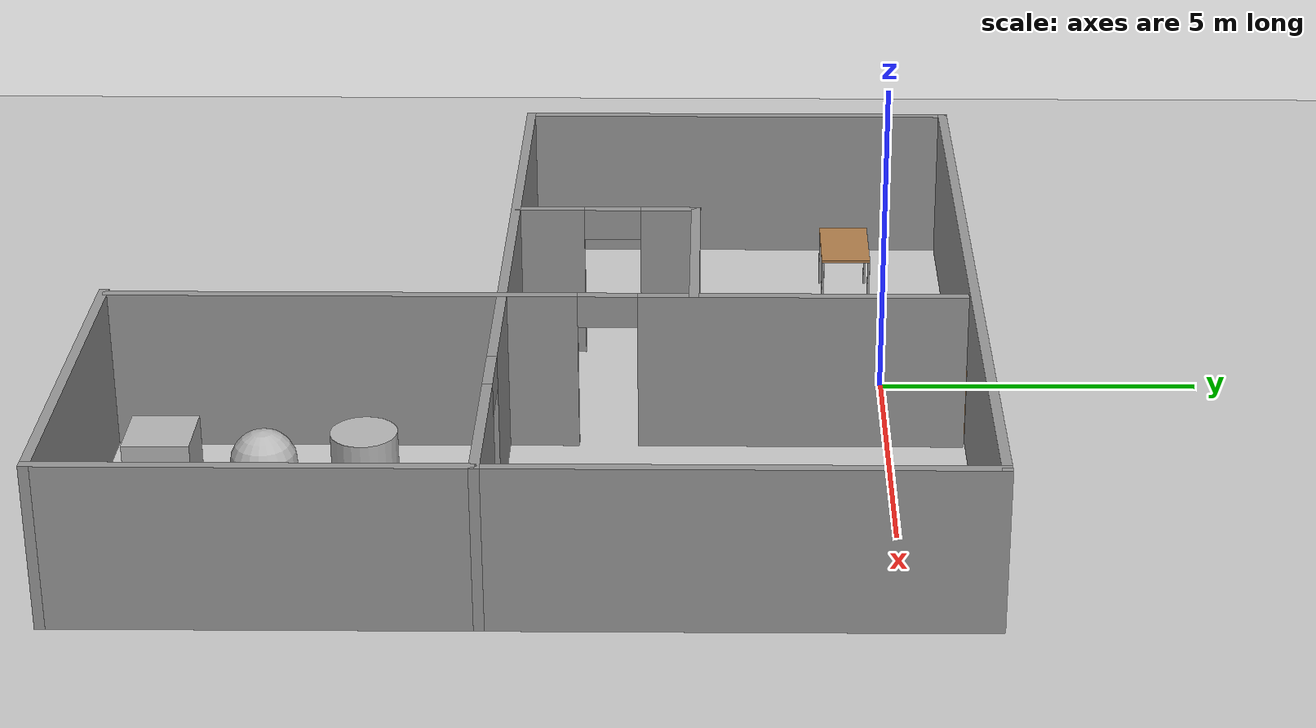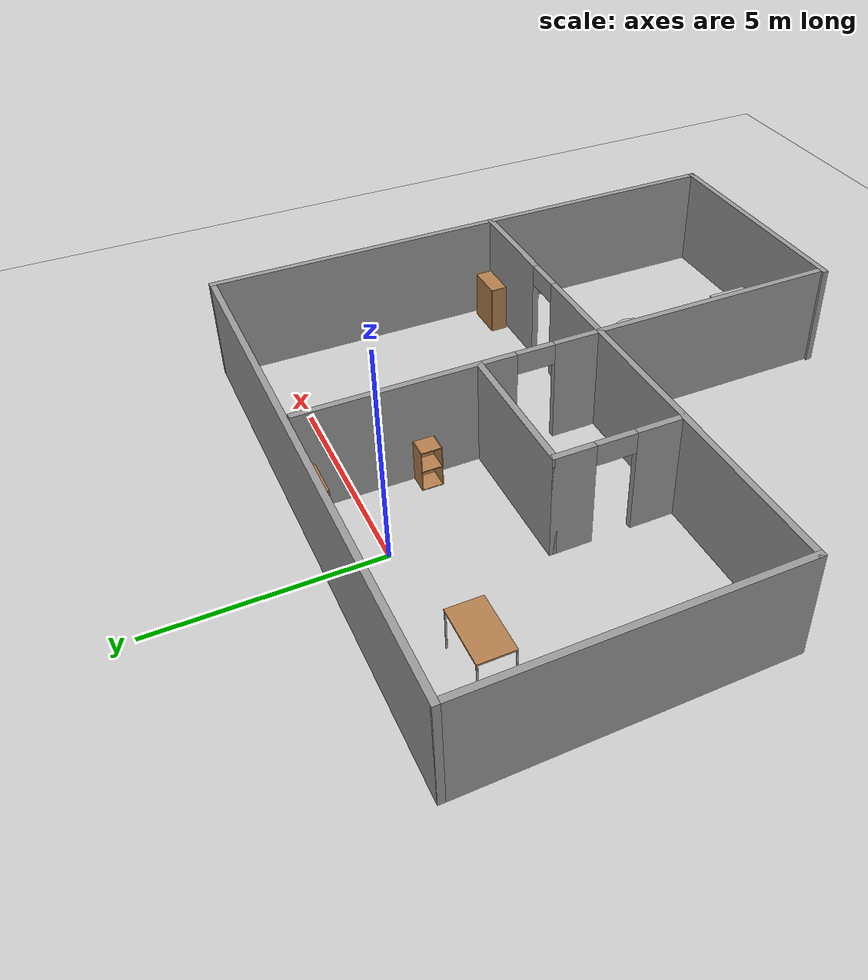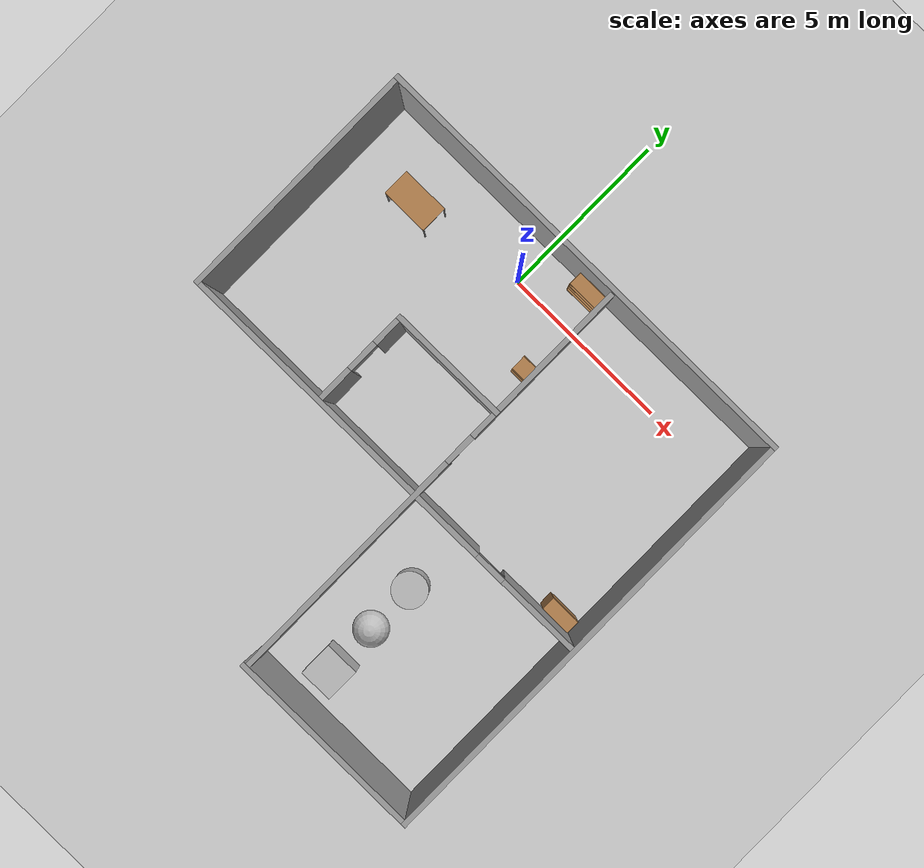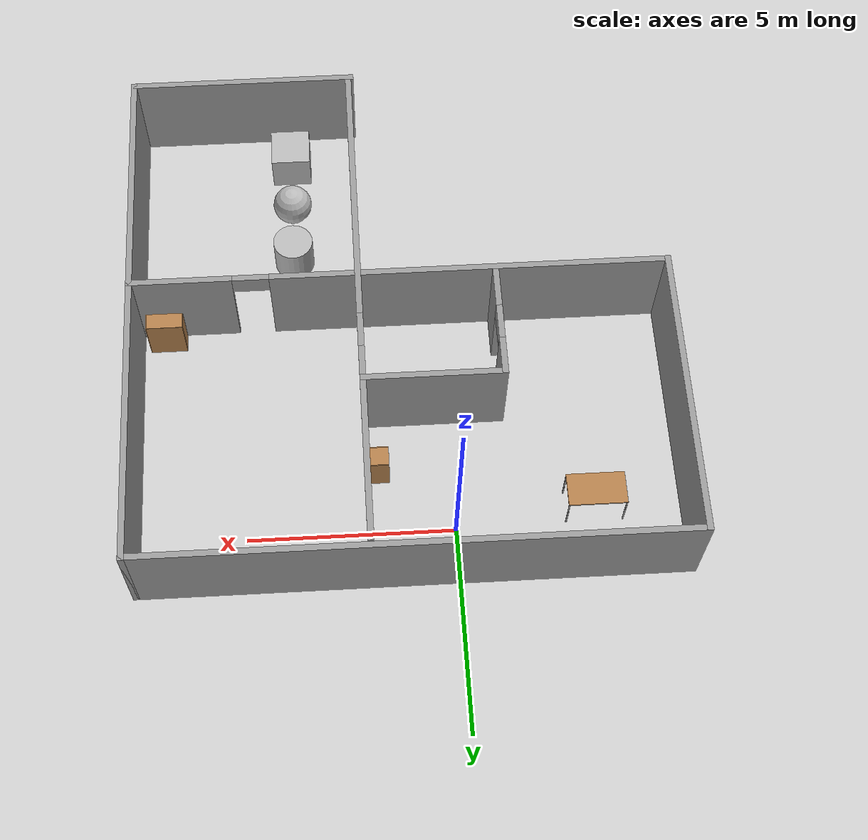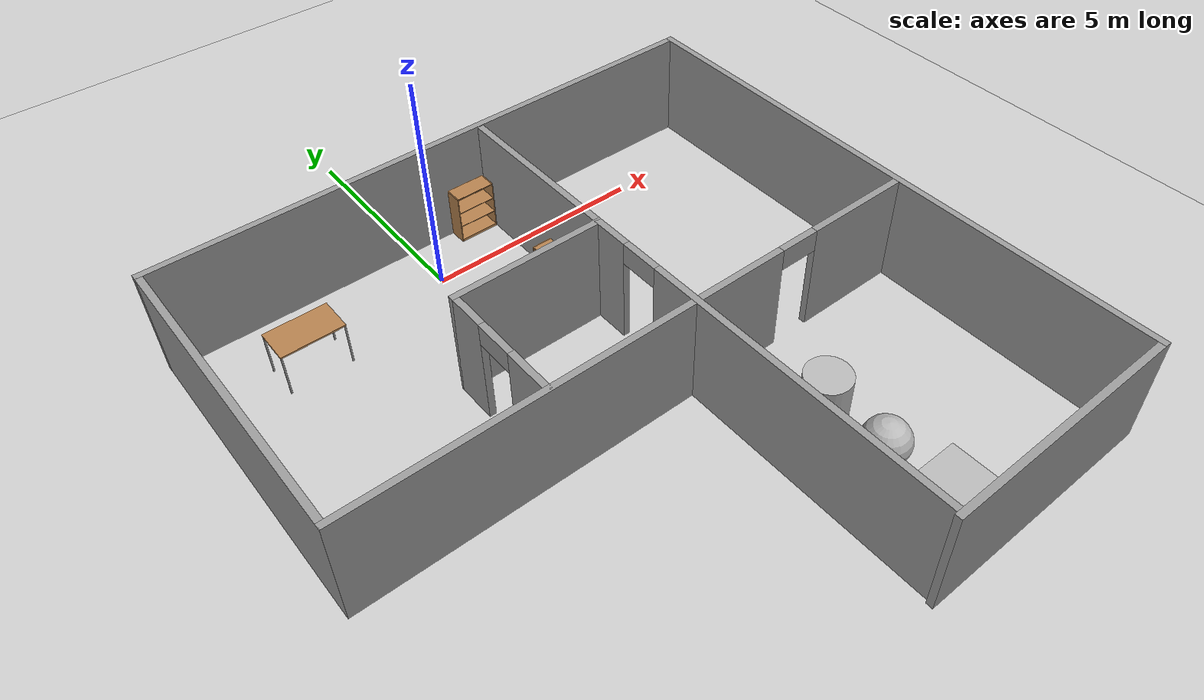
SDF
<sdf version="1.6">
 <world name="default">
  <light name="sun" type="directional">
   <pose>0 0 15 0 -0 0</pose>
   <diffuse>1 1 1 1</diffuse>
   <specular>0.1 0.1 0.1 1</specular>
   <attenuation>
    <range>1000</range>
    <constant>0.9</constant>
    <linear>0.01</linear>
    <quadratic>0.001</quadratic>
   </attenuation>
   <direction>-0.5 0.5 -1</direction>
  </light>
  <model name="ground_plane">
   <static>1</static>
   <link name="link">
    <collision name="collision">
     <geometry><plane><normal>0 0 1</normal><size>100 100</size></plane></geometry>
     <surface><friction><ode><mu>100</mu><mu2>50</mu2></ode></friction></surface>
    </collision>
    <visual name="visual">
     <cast_shadows>0</cast_shadows>
     <geometry><plane><normal>0 0 1</normal><size>100 100</size></plane></geometry>
     <material>
      <script><uri>file://media/materials/scripts/gazebo.material</uri><name>Gazebo/Grey</name></script>
     </material>
    </visual>
   </link>
  </model>
  <gravity>0 0 -9.8</gravity>
  <magnetic_field>6e-06 2.3e-05 -4.2e-05</magnetic_field>
  <atmosphere type="adiabatic"/>
  <physics name="default_physics" default="0" type="ode">
   <max_step_size>0.001</max_step_size>
   <real_time_factor>1</real_time_factor>
   <real_time_update_rate>1000</real_time_update_rate>
  </physics>
  <scene><ambient>0.4 0.4 0.4 1</ambient><background>0.7 0.7 0.7 1</background><shadows>1</shadows></scene>
  <spherical_coordinates>
   <surface_model>EARTH_WGS84</surface_model>
   <latitude_deg>0</latitude_deg>
   <longitude_deg>0</longitude_deg>
   <elevation>0</elevation>
   <heading_deg>0</heading_deg>
  </spherical_coordinates>
  <model name="testmap1">
   <pose>1.05093 -5.28705 0 0 -0 0</pose>
   <link name="Wall_1">
    <collision name="Wall_1_Collision">
     <geometry><box><size>13.25 0.15 2.5</size></box></geometry>
     <pose>0 0 1.25 0 -0 0</pose>
    </collision>
    <visual name="Wall_1_Visual">
     <pose>0 0 1.25 0 -0 0</pose>
     <geometry><box><size>13.25 0.15 2.5</size></box></geometry>
     <material>
      <script><uri>file://media/materials/scripts/gazebo.material</uri><name>Gazebo/Grey</name></script>
      <ambient>1 1 1 1</ambient>
     </material>
    </visual>
    <pose>0 6.55 0 0 -0 0</pose>
   </link>
   <link name="Wall_11">
    <collision name="Wall_11_Collision">
     <geometry><box><size>3.5 0.15 2.5</size></box></geometry>
     <pose>0 0 1.25 0 -0 0</pose>
    </collision>
    <visual name="Wall_11_Visual">
     <pose>0 0 1.25 0 -0 0</pose>
     <geometry><box><size>3.5 0.15 2.5</size></box></geometry>
     <material>
      <script><uri>file://media/materials/scripts/gazebo.material</uri><name>Gazebo/Grey</name></script>
      <ambient>1 1 1 1</ambient>
     </material>
    </visual>
    <pose>-0.663985 2.33165 0 0 -0 3.14159</pose>
   </link>
   <link name="Wall_12">
    <pose>-2.33899 0.906653 0 0 0 -1.5708</pose>
    <visual name="Wall_12_Visual_0">
     <pose>-1.0191 0 1.25 0 -0 0</pose>
     <geometry><box><size>0.961793 0.15 2.5</size></box></geometry>
     <material>
      <script><uri>file://media/materials/scripts/gazebo.material</uri><name>Gazebo/Grey</name></script>
      <ambient>1 1 1 1</ambient>
     </material>
    </visual>
    <collision name="Wall_12_Collision_0">
     <geometry><box><size>0.961793 0.15 2.5</size></box></geometry>
     <pose>-1.0191 0 1.25 0 -0 0</pose>
    </collision>
    <visual name="Wall_12_Visual_1">
     <pose>0.930896 0 1.25 0 -0 0</pose>
     <geometry><box><size>1.13821 0.15 2.5</size></box></geometry>
     <material>
      <script><uri>file://media/materials/scripts/gazebo.material</uri><name>Gazebo/Grey</name></script>
      <ambient>1 1 1 1</ambient>
     </material>
    </visual>
    <collision name="Wall_12_Collision_1">
     <geometry><box><size>1.13821 0.15 2.5</size></box></geometry>
     <pose>0.930896 0 1.25 0 -0 0</pose>
    </collision>
    <visual name="Wall_12_Visual_2">
     <pose>-0.088207 0 2.25 0 -0 0</pose>
     <geometry><box><size>0.9 0.15 0.5</size></box></geometry>
     <material>
      <script><uri>file://media/materials/scripts/gazebo.material</uri><name>Gazebo/Grey</name></script>
      <ambient>1 1 1 1</ambient>
     </material>
    </visual>
    <collision name="Wall_12_Collision_2">
     <geometry><box><size>0.9 0.15 0.5</size></box></geometry>
     <pose>-0.088207 0 2.25 0 -0 0</pose>
    </collision>
   </link>
   <link name="Wall_2">
    <collision name="Wall_2_Collision">
     <geometry><box><size>13.25 0.15 2.5</size></box></geometry>
     <pose>0 0 1.25 0 -0 0</pose>
    </collision>
    <visual name="Wall_2_Visual">
     <pose>0 0 1.25 0 -0 0</pose>
     <geometry><box><size>13.25 0.15 2.5</size></box></geometry>
     <material>
      <script><uri>file://media/materials/scripts/gazebo.material</uri><name>Gazebo/Grey</name></script>
      <ambient>1 1 1 1</ambient>
     </material>
    </visual>
    <pose>6.55 0 0 0 0 -1.5708</pose>
   </link>
   <link name="Wall_3">
    <collision name="Wall_3_Collision">
     <geometry><box><size>5.75 0.15 2.5</size></box></geometry>
     <pose>0 0 1.25 0 -0 0</pose>
    </collision>
    <visual name="Wall_3_Visual">
     <pose>0 0 1.25 0 -0 0</pose>
     <geometry><box><size>5.75 0.15 2.5</size></box></geometry>
     <material>
      <script><uri>file://media/materials/scripts/gazebo.material</uri><name>Gazebo/Grey</name></script>
      <ambient>1 1 1 1</ambient>
     </material>
    </visual>
    <pose>3.75 -6.55 0 0 -0 3.14159</pose>
   </link>
   <link name="Wall_6">
    <pose>1.01101 -0.047789 0 0 0 -1.5708</pose>
    <visual name="Wall_6_Visual_0">
     <pose>-4.01391 0 1.25 0 -0 0</pose>
     <geometry><box><size>4.97217 0.15 2.5</size></box></geometry>
     <material>
      <script><uri>file://media/materials/scripts/gazebo.material</uri><name>Gazebo/Grey</name></script>
      <ambient>1 1 1 1</ambient>
     </material>
    </visual>
    <collision name="Wall_6_Collision_0">
     <geometry><box><size>4.97217 0.15 2.5</size></box></geometry>
     <pose>-4.01391 0 1.25 0 -0 0</pose>
    </collision>
    <visual name="Wall_6_Visual_1">
     <pose>2.93609 0 1.25 0 -0 0</pose>
     <geometry><box><size>7.12783 0.15 2.5</size></box></geometry>
     <material>
      <script><uri>file://media/materials/scripts/gazebo.material</uri><name>Gazebo/Grey</name></script>
      <ambient>1 1 1 1</ambient>
     </material>
    </visual>
    <collision name="Wall_6_Collision_1">
     <geometry><box><size>7.12783 0.15 2.5</size></box></geometry>
     <pose>2.93609 0 1.25 0 -0 0</pose>
    </collision>
    <visual name="Wall_6_Visual_2">
     <pose>-1.07783 0 2.25 0 -0 0</pose>
     <geometry><box><size>0.9 0.15 0.5</size></box></geometry>
     <material>
      <script><uri>file://media/materials/scripts/gazebo.material</uri><name>Gazebo/Grey</name></script>
      <ambient>1 1 1 1</ambient>
     </material>
    </visual>
    <collision name="Wall_6_Collision_2">
     <geometry><box><size>0.9 0.15 0.5</size></box></geometry>
     <pose>-1.07783 0 2.25 0 -0 0</pose>
    </collision>
   </link>
   <link name="Wall_8">
    <collision name="Wall_8_Collision">
     <geometry><box><size>7.25 0.15 2.5</size></box></geometry>
     <pose>0 0 1.25 0 -0 0</pose>
    </collision>
    <visual name="Wall_8_Visual">
     <pose>0 0 1.25 0 -0 0</pose>
     <geometry><box><size>7.25 0.15 2.5</size></box></geometry>
     <material>
      <script><uri>file://media/materials/scripts/gazebo.material</uri><name>Gazebo/Grey</name></script>
      <ambient>1 1 1 1</ambient>
     </material>
    </visual>
    <pose>-6.55 3 0 0 0 -1.5708</pose>
   </link>
   <link name="Wall_9">
    <pose>0 -0.55 0 0 -0 0</pose>
    <visual name="Wall_9_Visual_0">
     <pose>-1.73038 0 1.25 0 -0 0</pose>
     <geometry><box><size>9.78924 0.15 2.5</size></box></geometry>
     <material>
      <script><uri>file://media/materials/scripts/gazebo.material</uri><name>Gazebo/Grey</name></script>
      <ambient>1 1 1 1</ambient>
     </material>
    </visual>
    <collision name="Wall_9_Collision_0">
     <geometry><box><size>9.78924 0.15 2.5</size></box></geometry>
     <pose>-1.73038 0 1.25 0 -0 0</pose>
    </collision>
    <visual name="Wall_9_Visual_1">
     <pose>5.34462 0 1.25 0 -0 0</pose>
     <geometry><box><size>2.56076 0.15 2.5</size></box></geometry>
     <material>
      <script><uri>file://media/materials/scripts/gazebo.material</uri><name>Gazebo/Grey</name></script>
      <ambient>1 1 1 1</ambient>
     </material>
    </visual>
    <collision name="Wall_9_Collision_1">
     <geometry><box><size>2.56076 0.15 2.5</size></box></geometry>
     <pose>5.34462 0 1.25 0 -0 0</pose>
    </collision>
    <visual name="Wall_9_Visual_2">
     <pose>3.61424 0 2.25 0 -0 0</pose>
     <geometry><box><size>0.9 0.15 0.5</size></box></geometry>
     <material>
      <script><uri>file://media/materials/scripts/gazebo.material</uri><name>Gazebo/Grey</name></script>
      <ambient>1 1 1 1</ambient>
     </material>
    </visual>
    <collision name="Wall_9_Collision_2">
     <geometry><box><size>0.9 0.15 0.5</size></box></geometry>
     <pose>3.61424 0 2.25 0 -0 0</pose>
    </collision>
   </link>
   <static>1</static>
  </model>
  <model name="table">
   <static>0</static>
   <link name="link">
    <collision name="surface">
     <pose>0 0 1 0 -0 0</pose>
     <geometry><box><size>1.5 0.8 0.03</size></box></geometry>
     <surface><friction><ode><mu>0.6</mu><mu2>0.6</mu2></ode></friction></surface>
    </collision>
    <visual name="visual1">
     <pose>0 0 1 0 -0 0</pose>
     <geometry><box><size>1.4 0.8 0.04</size></box></geometry>
     <material>
      <script><uri>file://media/materials/scripts/gazebo.material</uri><name>Gazebo/Wood</name></script>
     </material>
    </visual>
    <collision name="front_left_leg">
     <pose>0.68 0.38 0.5 0 -0 0</pose>
     <geometry><cylinder><radius>0.02</radius><length>1</length></cylinder></geometry>
    </collision>
    <visual name="front_left_leg">
     <pose>0.68 0.38 0.5 0 -0 0</pose>
     <geometry><cylinder><radius>0.02</radius><length>1</length></cylinder></geometry>
     <material>
      <script><uri>file://media/materials/scripts/gazebo.material</uri><name>Gazebo/Grey</name></script>
     </material>
    </visual>
    <collision name="front_right_leg">
     <pose>0.68 -0.38 0.5 0 -0 0</pose>
     <geometry><cylinder><radius>0.02</radius><length>1</length></cylinder></geometry>
    </collision>
    <visual name="front_right_leg">
     <pose>0.68 -0.38 0.5 0 -0 0</pose>
     <geometry><cylinder><radius>0.02</radius><length>1</length></cylinder></geometry>
     <material>
      <script><uri>file://media/materials/scripts/gazebo.material</uri><name>Gazebo/Grey</name></script>
     </material>
    </visual>
    <collision name="back_right_leg">
     <pose>-0.68 -0.38 0.5 0 -0 0</pose>
     <geometry><cylinder><radius>0.02</radius><length>1</length></cylinder></geometry>
    </collision>
    <visual name="back_right_leg">
     <pose>-0.68 -0.38 0.5 0 -0 0</pose>
     <geometry><cylinder><radius>0.02</radius><length>1</length></cylinder></geometry>
     <material>
      <script><uri>file://media/materials/scripts/gazebo.material</uri><name>Gazebo/Grey</name></script>
     </material>
    </visual>
    <collision name="back_left_leg">
     <pose>-0.68 0.38 0.5 0 -0 0</pose>
     <geometry><cylinder><radius>0.02</radius><length>1</length></cylinder></geometry>
    </collision>
    <visual name="back_left_leg">
     <pose>-0.68 0.38 0.5 0 -0 0</pose>
     <geometry><cylinder><radius>0.02</radius><length>1</length></cylinder></geometry>
     <material>
      <script><uri>file://media/materials/scripts/gazebo.material</uri><name>Gazebo/Grey</name></script>
     </material>
    </visual>
    <inertial>
     <inertia><ixx>1</ixx><ixy>0</ixy><ixz>0</ixz><iyy>1</iyy><iyz>0</iyz><izz>1</izz></inertia>
     <mass>1</mass>
    </inertial>
   </link>
   <pose>-3.32275 -0.47379 -1e-06 1e-06 -0 0</pose>
  </model>
  <model name="bookshelf">
   <static>1</static>
   <link name="link">
    <inertial><mass>1</mass></inertial>
    <collision name="back">
     <pose>0 0.005 0.6 0 -0 0</pose>
     <geometry><box><size>0.9 0.01 1.2</size></box></geometry>
    </collision>
    <visual name="visual1">
     <pose>0 0.005 0.6 0 -0 0</pose>
     <geometry><box><size>0.9 0.01 1.2</size></box></geometry>
     <material>
      <script><uri>file://media/materials/scripts/gazebo.material</uri><name>Gazebo/Wood</name></script>
     </material>
    </visual>
    <collision name="left_side">
     <pose>0.45 -0.195 0.6 0 -0 0</pose>
     <geometry><box><size>0.02 0.4 1.2</size></box></geometry>
    </collision>
    <visual name="visual2">
     <pose>0.45 -0.195 0.6 0 -0 0</pose>
     <geometry><box><size>0.02 0.4 1.2</size></box></geometry>
     <material>
      <script><uri>file://media/materials/scripts/gazebo.material</uri><name>Gazebo/Wood</name></script>
     </material>
    </visual>
    <collision name="right_side">
     <pose>-0.45 -0.195 0.6 0 -0 0</pose>
     <geometry><box><size>0.02 0.4 1.2</size></box></geometry>
    </collision>
    <visual name="visual3">
     <pose>-0.45 -0.195 0.6 0 -0 0</pose>
     <geometry><box><size>0.02 0.4 1.2</size></box></geometry>
     <material>
      <script><uri>file://media/materials/scripts/gazebo.material</uri><name>Gazebo/Wood</name></script>
     </material>
    </visual>
    <collision name="bottom">
     <pose>0 -0.195 0.03 0 -0 0</pose>
     <geometry><box><size>0.88 0.4 0.06</size></box></geometry>
    </collision>
    <visual name="visual4">
     <pose>0 -0.195 0.03 0 -0 0</pose>
     <geometry><box><size>0.88 0.4 0.06</size></box></geometry>
     <material>
      <script><uri>file://media/materials/scripts/gazebo.material</uri><name>Gazebo/Wood</name></script>
     </material>
    </visual>
    <collision name="top">
     <pose>0 -0.195 1.19 0 -0 0</pose>
     <geometry><box><size>0.88 0.4 0.02</size></box></geometry>
    </collision>
    <visual name="visual5">
     <pose>0 -0.195 1.19 0 -0 0</pose>
     <geometry><box><size>0.88 0.4 0.02</size></box></geometry>
     <material>
      <script><uri>file://media/materials/scripts/gazebo.material</uri><name>Gazebo/Wood</name></script>
     </material>
    </visual>
    <collision name="low_shelf">
     <pose>0 -0.195 0.43 0 -0 0</pose>
     <geometry><box><size>0.88 0.4 0.02</size></box></geometry>
    </collision>
    <visual name="visual6">
     <pose>0 -0.195 0.43 0 -0 0</pose>
     <geometry><box><size>0.88 0.4 0.02</size></box></geometry>
     <material>
      <script><uri>file://media/materials/scripts/gazebo.material</uri><name>Gazebo/Wood</name></script>
     </material>
    </visual>
    <collision name="high_shelf">
     <pose>0 -0.195 0.8 0 -0 0</pose>
     <geometry><box><size>0.88 0.4 0.02</size></box></geometry>
    </collision>
    <visual name="visual7">
     <pose>0 -0.195 0.8 0 -0 0</pose>
     <geometry><box><size>0.88 0.4 0.02</size></box></geometry>
     <material>
      <script><uri>file://media/materials/scripts/gazebo.material</uri><name>Gazebo/Wood</name></script>
     </material>
    </visual>
   </link>
   <pose>1.52084 1.17802 0 0 -0 0</pose>
  </model>
  <model name="cabinet">
   <static>1</static>
   <link name="cabinet_bottom_plate">
    <inertial>
     <pose>0 0 -1 0 -0 0</pose>
     <inertia><ixx>2.05</ixx><ixy>0</ixy><ixz>0</ixz><iyy>2.05</iyy><iyz>0</iyz><izz>2.05</izz></inertia>
     <mass>25</mass>
    </inertial>
    <collision name="cabinet_bottom_plate_geom">
     <pose>0 0 0.01 0 -0 0</pose>
     <geometry><box><size>0.45 0.45 0.02</size></box></geometry>
    </collision>
    <visual name="cabinet_bottom_plate_geom_visual">
     <pose>0 0 0.01 0 -0 0</pose>
     <geometry><box><size>0.45 0.45 0.02</size></box></geometry>
     <material>
      <script><uri>file://media/materials/scripts/gazebo.material</uri><name>Gazebo/Wood</name></script>
     </material>
    </visual>
    <collision name="cabinet_bottom_plate_geom_cabinet_back_plate">
     <pose>0.235 0 0.51 0 -0 0</pose>
     <geometry><box><size>0.02 0.45 1.02</size></box></geometry>
    </collision>
    <visual name="cabinet_bottom_plate_geom_cabinet_back_plate_visual">
     <pose>0.235 0 0.51 0 -0 0</pose>
     <geometry><box><size>0.02 0.45 1.02</size></box></geometry>
     <material>
      <script><uri>file://media/materials/scripts/gazebo.material</uri><name>Gazebo/Wood</name></script>
     </material>
    </visual>
    <collision name="cabinet_bottom_plate_geom_cabinet_left_plate">
     <pose>0 0.235 0.51 0 -0 0</pose>
     <geometry><box><size>0.45 0.02 1.02</size></box></geometry>
    </collision>
    <visual name="cabinet_bottom_plate_geom_cabinet_left_plate_visual">
     <pose>0 0.235 0.51 0 -0 0</pose>
     <geometry><box><size>0.45 0.02 1.02</size></box></geometry>
     <material>
      <script><uri>file://media/materials/scripts/gazebo.material</uri><name>Gazebo/Wood</name></script>
     </material>
    </visual>
    <collision name="cabinet_bottom_plate_geom_cabinet_middle_plate">
     <pose>0 0 0.51 0 -0 0</pose>
     <geometry><box><size>0.45 0.45 0.02</size></box></geometry>
    </collision>
    <visual name="cabinet_bottom_plate_geom_cabinet_middle_plate_visual">
     <pose>0 0 0.51 0 -0 0</pose>
     <geometry><box><size>0.45 0.45 0.02</size></box></geometry>
     <material>
      <script><uri>file://media/materials/scripts/gazebo.material</uri><name>Gazebo/Wood</name></script>
     </material>
    </visual>
    <collision name="cabinet_bottom_plate_geom_cabinet_right_plate">
     <pose>0 -0.235 0.51 0 -0 0</pose>
     <geometry><box><size>0.45 0.02 1.02</size></box></geometry>
    </collision>
    <visual name="cabinet_bottom_plate_geom_cabinet_right_plate_visual">
     <pose>0 -0.235 0.51 0 -0 0</pose>
     <geometry><box><size>0.45 0.02 1.02</size></box></geometry>
     <material>
      <script><uri>file://media/materials/scripts/gazebo.material</uri><name>Gazebo/Wood</name></script>
     </material>
    </visual>
    <collision name="cabinet_bottom_plate_geom_cabinet_top_plate">
     <pose>0 0 1.01 0 -0 0</pose>
     <geometry><box><size>0.45 0.45 0.02</size></box></geometry>
    </collision>
    <visual name="cabinet_bottom_plate_geom_cabinet_top_plate_visual">
     <pose>0 0 1.01 0 -0 0</pose>
     <geometry><box><size>0.45 0.45 0.02</size></box></geometry>
     <material>
      <script><uri>file://media/materials/scripts/gazebo.material</uri><name>Gazebo/Wood</name></script>
     </material>
    </visual>
   </link>
   <pose>1.75844 -1.5931 0 0 -0 0</pose>
  </model>
  <model name="textured_shapes">
   <pose>3.67333 -9.30231 0.5 0 -0 0</pose>
   <link name="box">
    <pose>0 -1.5 0 0 -0 0</pose>
    <collision name="collision"><geometry><box><size>1 1 1</size></box></geometry></collision>
    <visual name="visual">
     <geometry><box><size>1 1 1</size></box></geometry>
     <material>
      <script>
       <uri>model://textured_shapes/materials/scripts</uri>
       <uri>model://textured_shapes/materials/textures</uri>
       <name>TexturedShape/Squares</name>
      </script>
     </material>
    </visual>
    <inertial>
     <inertia><ixx>1</ixx><ixy>0</ixy><ixz>0</ixz><iyy>1</iyy><iyz>0</iyz><izz>1</izz></inertia>
     <mass>1</mass>
    </inertial>
   </link>
   <link name="sphere">
    <collision name="collision"><geometry><sphere><radius>0.5</radius></sphere></geometry></collision>
    <visual name="visual">
     <geometry><sphere><radius>0.5</radius></sphere></geometry>
     <material>
      <script>
       <uri>model://textured_shapes/materials/scripts</uri>
       <uri>model://textured_shapes/materials/textures</uri>
       <name>TexturedShape/Squares</name>
      </script>
     </material>
    </visual>
    <inertial>
     <inertia><ixx>1</ixx><ixy>0</ixy><ixz>0</ixz><iyy>1</iyy><iyz>0</iyz><izz>1</izz></inertia>
     <mass>1</mass>
    </inertial>
   </link>
   <link name="cylinder">
    <pose>0 1.5 0 0 -0 0</pose>
    <collision name="collision">
     <geometry><cylinder><radius>0.5</radius><length>1</length></cylinder></geometry>
    </collision>
    <visual name="visual">
     <geometry><cylinder><radius>0.5</radius><length>1</length></cylinder></geometry>
     <material>
      <script>
       <uri>model://textured_shapes/materials/scripts</uri>
       <uri>model://textured_shapes/materials/textures</uri>
       <name>TexturedShape/Squares</name>
      </script>
     </material>
    </visual>
    <inertial>
     <inertia><ixx>1</ixx><ixy>0</ixy><ixz>0</ixz><iyy>1</iyy><iyz>0</iyz><izz>1</izz></inertia>
     <mass>1</mass>
    </inertial>
   </link>
  </model>
  <model name="bookshelf_0">
   <static>1</static>
   <link name="link">
    <inertial><mass>1</mass></inertial>
    <collision name="back">
     <pose>0 0.005 0.6 0 -0 0</pose>
     <geometry><box><size>0.9 0.01 1.2</size></box></geometry>
    </collision>
    <visual name="visual1">
     <pose>0 0.005 0.6 0 -0 0</pose>
     <geometry><box><size>0.9 0.01 1.2</size></box></geometry>
     <material>
      <script><uri>file://media/materials/scripts/gazebo.material</uri><name>Gazebo/Wood</name></script>
     </material>
    </visual>
    <collision name="left_side">
     <pose>0.45 -0.195 0.6 0 -0 0</pose>
     <geometry><box><size>0.02 0.4 1.2</size></box></geometry>
    </collision>
    <visual name="visual2">
     <pose>0.45 -0.195 0.6 0 -0 0</pose>
     <geometry><box><size>0.02 0.4 1.2</size></box></geometry>
     <material>
      <script><uri>file://media/materials/scripts/gazebo.material</uri><name>Gazebo/Wood</name></script>
     </material>
    </visual>
    <collision name="right_side">
     <pose>-0.45 -0.195 0.6 0 -0 0</pose>
     <geometry><box><size>0.02 0.4 1.2</size></box></geometry>
    </collision>
    <visual name="visual3">
     <pose>-0.45 -0.195 0.6 0 -0 0</pose>
     <geometry><box><size>0.02 0.4 1.2</size></box></geometry>
     <material>
      <script><uri>file://media/materials/scripts/gazebo.material</uri><name>Gazebo/Wood</name></script>
     </material>
    </visual>
    <collision name="bottom">
     <pose>0 -0.195 0.03 0 -0 0</pose>
     <geometry><box><size>0.88 0.4 0.06</size></box></geometry>
    </collision>
    <visual name="visual4">
     <pose>0 -0.195 0.03 0 -0 0</pose>
     <geometry><box><size>0.88 0.4 0.06</size></box></geometry>
     <material>
      <script><uri>file://media/materials/scripts/gazebo.material</uri><name>Gazebo/Wood</name></script>
     </material>
    </visual>
    <collision name="top">
     <pose>0 -0.195 1.19 0 -0 0</pose>
     <geometry><box><size>0.88 0.4 0.02</size></box></geometry>
    </collision>
    <visual name="visual5">
     <pose>0 -0.195 1.19 0 -0 0</pose>
     <geometry><box><size>0.88 0.4 0.02</size></box></geometry>
     <material>
      <script><uri>file://media/materials/scripts/gazebo.material</uri><name>Gazebo/Wood</name></script>
     </material>
    </visual>
    <collision name="low_shelf">
     <pose>0 -0.195 0.43 0 -0 0</pose>
     <geometry><box><size>0.88 0.4 0.02</size></box></geometry>
    </collision>
    <visual name="visual6">
     <pose>0 -0.195 0.43 0 -0 0</pose>
     <geometry><box><size>0.88 0.4 0.02</size></box></geometry>
     <material>
      <script><uri>file://media/materials/scripts/gazebo.material</uri><name>Gazebo/Wood</name></script>
     </material>
    </visual>
    <collision name="high_shelf">
     <pose>0 -0.195 0.8 0 -0 0</pose>
     <geometry><box><size>0.88 0.4 0.02</size></box></geometry>
    </collision>
    <visual name="visual7">
     <pose>0 -0.195 0.8 0 -0 0</pose>
     <geometry><box><size>0.88 0.4 0.02</size></box></geometry>
     <material>
      <script><uri>file://media/materials/scripts/gazebo.material</uri><name>Gazebo/Wood</name></script>
     </material>
    </visual>
   </link>
   <pose>6.90873 -5.31182 0 0 -0 0</pose>
  </model>
 </world>
</sdf>
